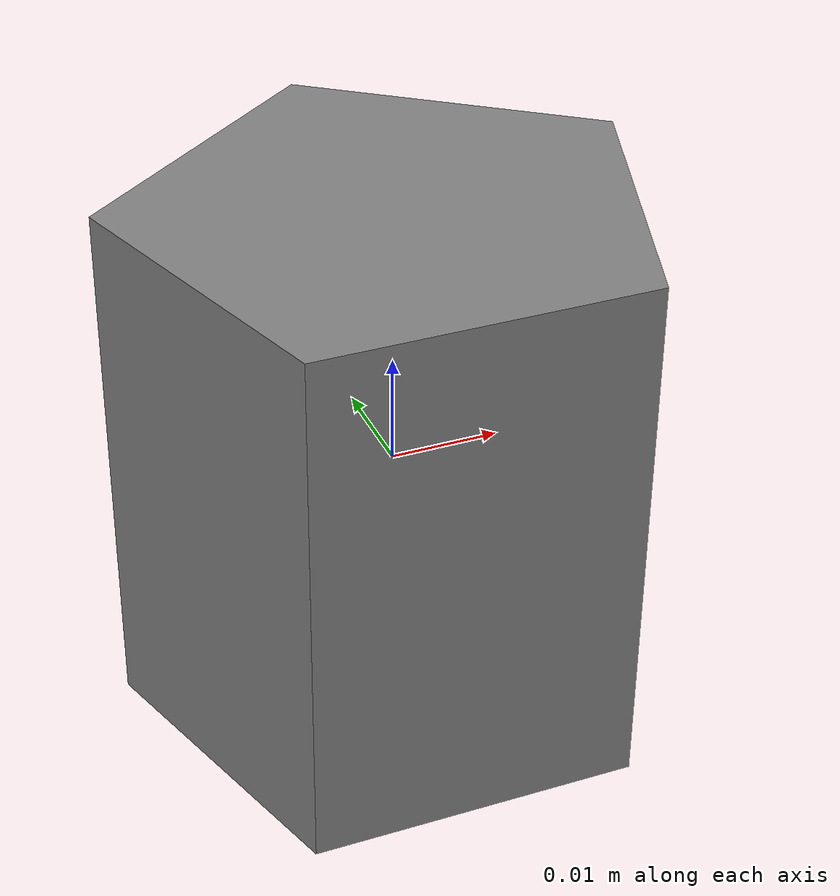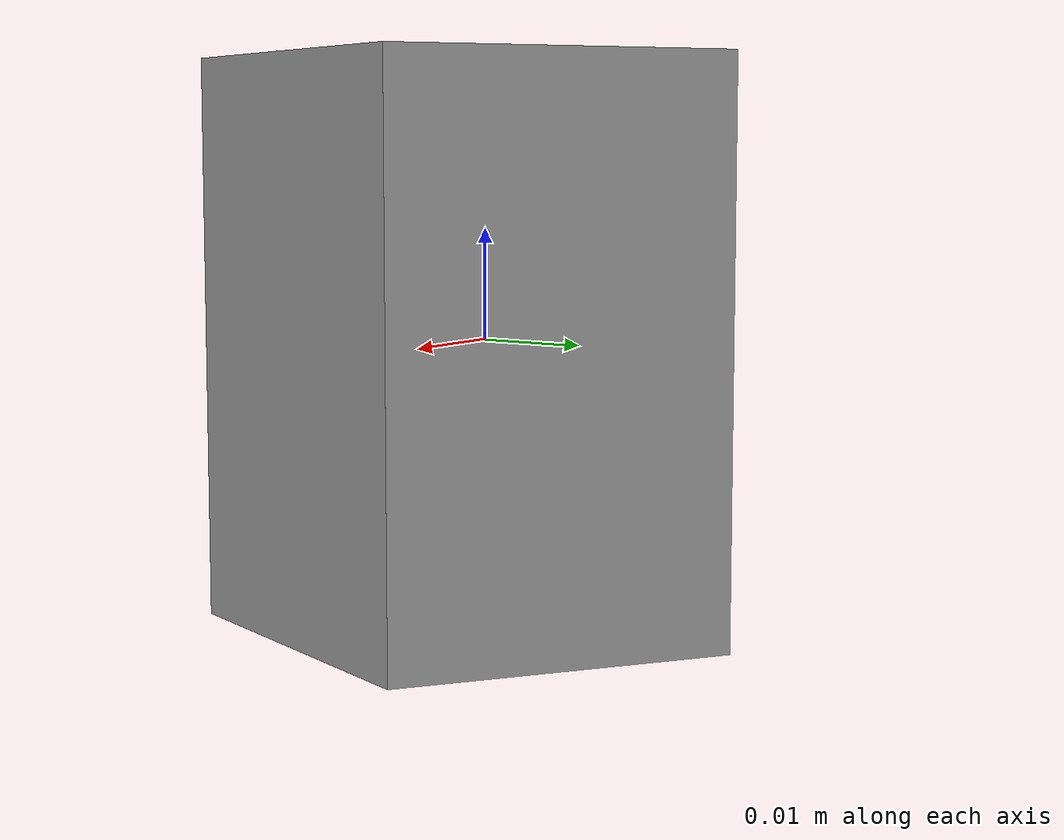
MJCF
<mujoco model="pentagon">
  <asset>
    <mesh file="pentagon_prism_block.obj" name="pentagon_prism_mesh" scale="1 1 1"/>
    <material name="pentagon_prism_mat" reflectance="0.5" rgba="0.5 0.5 0.5 1"/>
  </asset>
  <worldbody>
    <body>
      <body name="object">
        <geom pos="0 0 0" mesh="pentagon_prism_mesh" type="mesh" solimp="0.998 0.998 0.001" solref="0.001 1" density="50" friction="0.95 0.3 0.1" material="pentagon_prism_mat" group="0" condim="4"/>
      </body>
      <!-- Bottom site (centered at base) -->
      <site rgba="0 0 0 0" size="0.005" pos="0 0 -0.025" name="bottom_site"/>
      <!-- Top site (apex point) -->
      <site rgba="0 0 0 0" size="0.005" pos="0 0 0.025" name="top_site"/>
      <!-- Center of mass site -->
      <site rgba="0 0 0 0" size="0.005" pos="0 0 0" name="horizontal_radius_site"/>
    </body>
  </worldbody>
</mujoco>
